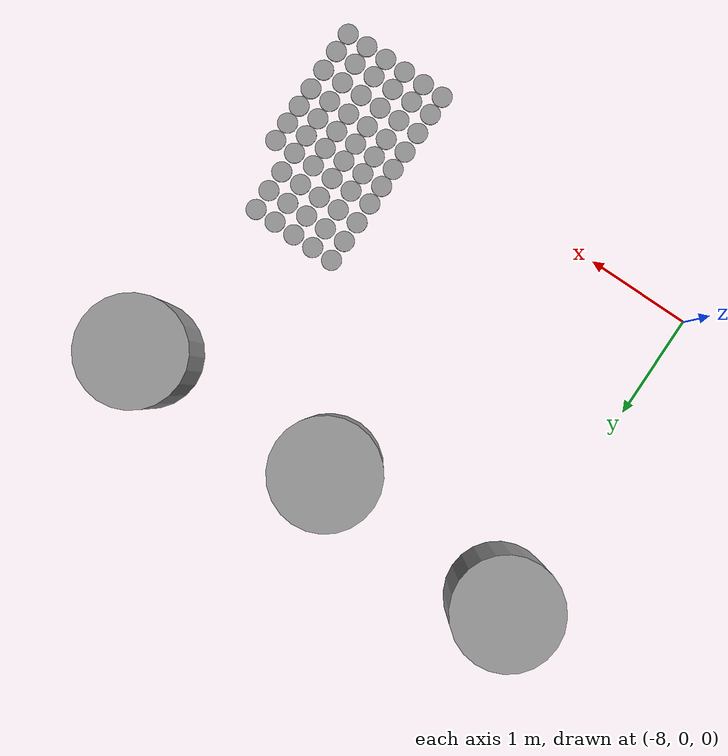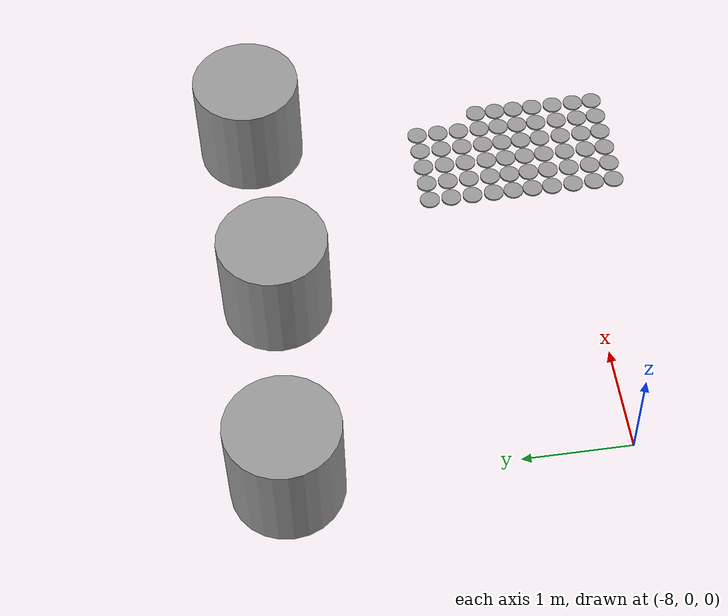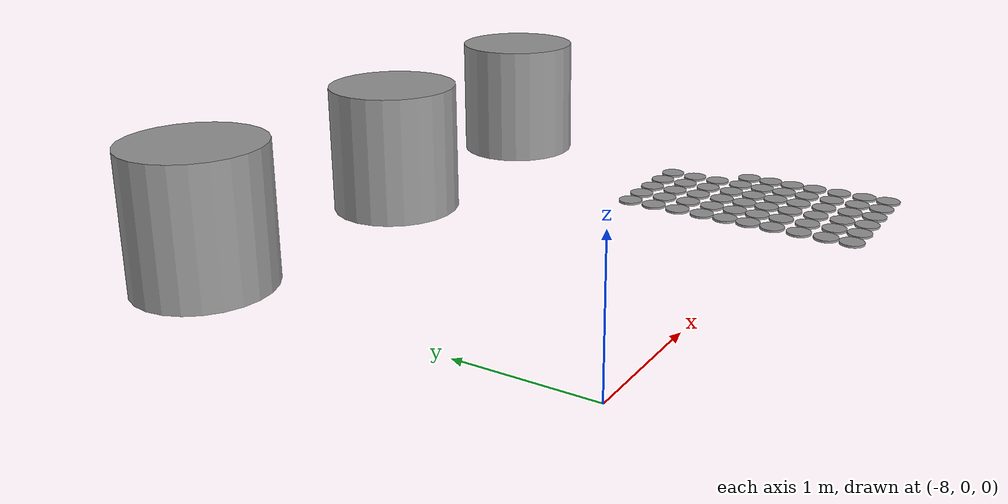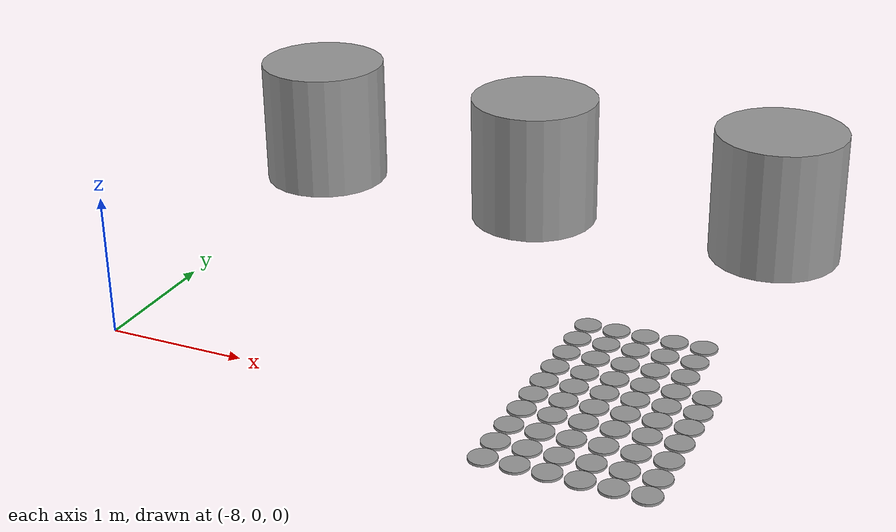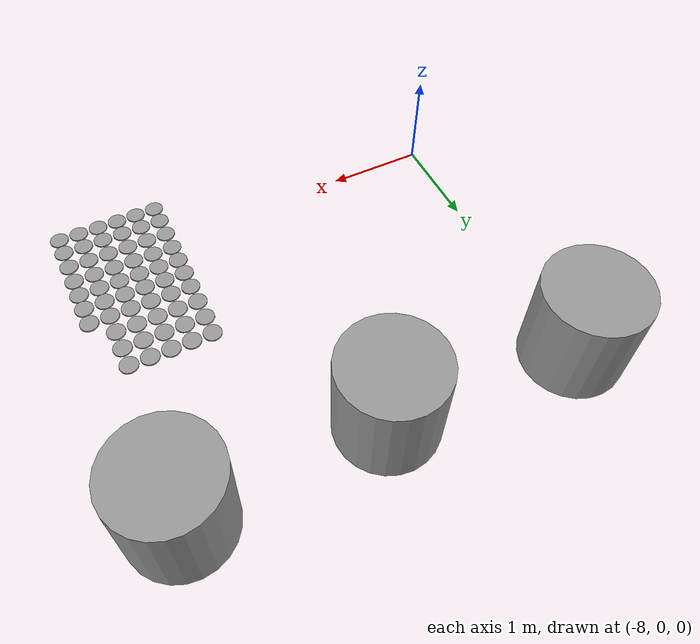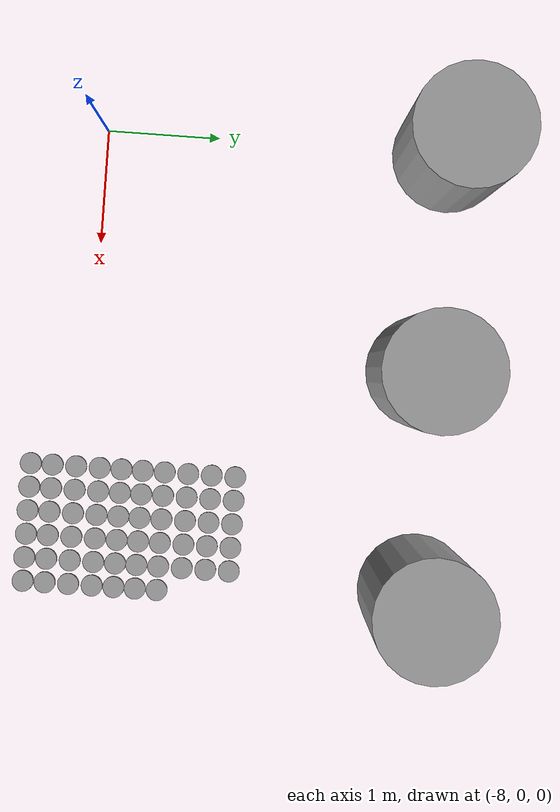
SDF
<sdf version="1.6">
 <world name="default">
  <model name="unit_cylinder_clone_0">
   <pose>-5 0.515077 0.008117 0 -0 0</pose>
   <link name="link">
    <inertial>
     <mass>1</mass>
     <inertia><ixx>0.145833</ixx><ixy>0</ixy><ixz>0</ixz><iyy>0.145833</iyy><iyz>0</iyz><izz>0.125</izz></inertia>
    </inertial>
    <collision name="collision">
     <geometry><cylinder><radius>0.0950718</radius><length>0.0162339</length></cylinder></geometry>
     <max_contacts>5</max_contacts>
    </collision>
    <visual name="visual">
     <geometry><cylinder><radius>0.0950718</radius><length>0.0162339</length></cylinder></geometry>
     <material>
      <script><name>Gazebo/Grey</name><uri>file://media/materials/scripts/gazebo.material</uri></script>
     </material>
    </visual>
   </link>
  </model>
  <model name="unit_cylinder_clone_1">
   <pose>-5 0.71 0.008117 0 -0 0</pose>
   <link name="link">
    <inertial>
     <mass>1</mass>
     <inertia><ixx>0.145833</ixx><ixy>0</ixy><ixz>0</ixz><iyy>0.145833</iyy><iyz>0</iyz><izz>0.125</izz></inertia>
    </inertial>
    <collision name="collision">
     <geometry><cylinder><radius>0.0950718</radius><length>0.0162339</length></cylinder></geometry>
     <max_contacts>5</max_contacts>
    </collision>
    <visual name="visual">
     <geometry><cylinder><radius>0.0950718</radius><length>0.0162339</length></cylinder></geometry>
     <material>
      <script><name>Gazebo/Grey</name><uri>file://media/materials/scripts/gazebo.material</uri></script>
     </material>
    </visual>
   </link>
  </model>
  <model name="unit_cylinder_clone_2">
   <pose>-5 0.92 0.008117 0 -0 0</pose>
   <link name="link">
    <inertial>
     <mass>1</mass>
     <inertia><ixx>0.145833</ixx><ixy>0</ixy><ixz>0</ixz><iyy>0.145833</iyy><iyz>0</iyz><izz>0.125</izz></inertia>
    </inertial>
    <collision name="collision">
     <geometry><cylinder><radius>0.0950718</radius><length>0.0162339</length></cylinder></geometry>
     <max_contacts>5</max_contacts>
    </collision>
    <visual name="visual">
     <geometry><cylinder><radius>0.0950718</radius><length>0.0162339</length></cylinder></geometry>
     <material>
      <script><name>Gazebo/Grey</name><uri>file://media/materials/scripts/gazebo.material</uri></script>
     </material>
    </visual>
   </link>
  </model>
  <model name="unit_cylinder_clone_3">
   <pose>-5 1.13 0.008117 0 -0 0</pose>
   <link name="link">
    <inertial>
     <mass>1</mass>
     <inertia><ixx>0.145833</ixx><ixy>0</ixy><ixz>0</ixz><iyy>0.145833</iyy><iyz>0</iyz><izz>0.125</izz></inertia>
    </inertial>
    <collision name="collision">
     <geometry><cylinder><radius>0.0950718</radius><length>0.0162339</length></cylinder></geometry>
     <max_contacts>5</max_contacts>
    </collision>
    <visual name="visual">
     <geometry><cylinder><radius>0.0950718</radius><length>0.0162339</length></cylinder></geometry>
     <material>
      <script><name>Gazebo/Grey</name><uri>file://media/materials/scripts/gazebo.material</uri></script>
     </material>
    </visual>
   </link>
  </model>
  <model name="unit_cylinder_clone_4">
   <pose>-5 1.34 0.008117 0 -0 0</pose>
   <link name="link">
    <inertial>
     <mass>1</mass>
     <inertia><ixx>0.145833</ixx><ixy>0</ixy><ixz>0</ixz><iyy>0.145833</iyy><iyz>0</iyz><izz>0.125</izz></inertia>
    </inertial>
    <collision name="collision">
     <geometry><cylinder><radius>0.0950718</radius><length>0.0162339</length></cylinder></geometry>
     <max_contacts>5</max_contacts>
    </collision>
    <visual name="visual">
     <geometry><cylinder><radius>0.0950718</radius><length>0.0162339</length></cylinder></geometry>
     <material>
      <script><name>Gazebo/Grey</name><uri>file://media/materials/scripts/gazebo.material</uri></script>
     </material>
    </visual>
   </link>
  </model>
  <model name="unit_cylinder_clone_5">
   <pose>-4.79 0.515077 0.008117 0 -0 0</pose>
   <link name="link">
    <inertial>
     <mass>1</mass>
     <inertia><ixx>0.145833</ixx><ixy>0</ixy><ixz>0</ixz><iyy>0.145833</iyy><iyz>0</iyz><izz>0.125</izz></inertia>
    </inertial>
    <collision name="collision">
     <geometry><cylinder><radius>0.0950718</radius><length>0.0162339</length></cylinder></geometry>
     <max_contacts>5</max_contacts>
    </collision>
    <visual name="visual">
     <geometry><cylinder><radius>0.0950718</radius><length>0.0162339</length></cylinder></geometry>
     <material>
      <script><name>Gazebo/Grey</name><uri>file://media/materials/scripts/gazebo.material</uri></script>
     </material>
    </visual>
   </link>
  </model>
  <model name="unit_cylinder_clone_6">
   <pose>-4.79 0.71 0.008117 0 -0 0</pose>
   <link name="link">
    <inertial>
     <mass>1</mass>
     <inertia><ixx>0.145833</ixx><ixy>0</ixy><ixz>0</ixz><iyy>0.145833</iyy><iyz>0</iyz><izz>0.125</izz></inertia>
    </inertial>
    <collision name="collision">
     <geometry><cylinder><radius>0.0950718</radius><length>0.0162339</length></cylinder></geometry>
     <max_contacts>5</max_contacts>
    </collision>
    <visual name="visual">
     <geometry><cylinder><radius>0.0950718</radius><length>0.0162339</length></cylinder></geometry>
     <material>
      <script><name>Gazebo/Grey</name><uri>file://media/materials/scripts/gazebo.material</uri></script>
     </material>
    </visual>
   </link>
  </model>
  <model name="unit_cylinder_clone_7">
   <pose>-4.79 0.92 0.008117 0 -0 0</pose>
   <link name="link">
    <inertial>
     <mass>1</mass>
     <inertia><ixx>0.145833</ixx><ixy>0</ixy><ixz>0</ixz><iyy>0.145833</iyy><iyz>0</iyz><izz>0.125</izz></inertia>
    </inertial>
    <collision name="collision">
     <geometry><cylinder><radius>0.0950718</radius><length>0.0162339</length></cylinder></geometry>
     <max_contacts>5</max_contacts>
    </collision>
    <visual name="visual">
     <geometry><cylinder><radius>0.0950718</radius><length>0.0162339</length></cylinder></geometry>
     <material>
      <script><name>Gazebo/Grey</name><uri>file://media/materials/scripts/gazebo.material</uri></script>
     </material>
    </visual>
   </link>
  </model>
  <model name="unit_cylinder_clone_8">
   <pose>-4.79 1.13 0.008117 0 -0 0</pose>
   <link name="link">
    <inertial>
     <mass>1</mass>
     <inertia><ixx>0.145833</ixx><ixy>0</ixy><ixz>0</ixz><iyy>0.145833</iyy><iyz>0</iyz><izz>0.125</izz></inertia>
    </inertial>
    <collision name="collision">
     <geometry><cylinder><radius>0.0950718</radius><length>0.0162339</length></cylinder></geometry>
     <max_contacts>5</max_contacts>
    </collision>
    <visual name="visual">
     <geometry><cylinder><radius>0.0950718</radius><length>0.0162339</length></cylinder></geometry>
     <material>
      <script><name>Gazebo/Grey</name><uri>file://media/materials/scripts/gazebo.material</uri></script>
     </material>
    </visual>
   </link>
  </model>
  <model name="unit_cylinder_clone_9">
   <pose>-4.79 1.34 0.008117 0 -0 0</pose>
   <link name="link">
    <inertial>
     <mass>1</mass>
     <inertia><ixx>0.145833</ixx><ixy>0</ixy><ixz>0</ixz><iyy>0.145833</iyy><iyz>0</iyz><izz>0.125</izz></inertia>
    </inertial>
    <collision name="collision">
     <geometry><cylinder><radius>0.0950718</radius><length>0.0162339</length></cylinder></geometry>
     <max_contacts>5</max_contacts>
    </collision>
    <visual name="visual">
     <geometry><cylinder><radius>0.0950718</radius><length>0.0162339</length></cylinder></geometry>
     <material>
      <script><name>Gazebo/Grey</name><uri>file://media/materials/scripts/gazebo.material</uri></script>
     </material>
    </visual>
   </link>
  </model>
  <model name="unit_cylinder_clone_10">
   <pose>-4.58 0.515077 0.008117 0 -0 0</pose>
   <link name="link">
    <inertial>
     <mass>1</mass>
     <inertia><ixx>0.145833</ixx><ixy>0</ixy><ixz>0</ixz><iyy>0.145833</iyy><iyz>0</iyz><izz>0.125</izz></inertia>
    </inertial>
    <collision name="collision">
     <geometry><cylinder><radius>0.0950718</radius><length>0.0162339</length></cylinder></geometry>
     <max_contacts>5</max_contacts>
    </collision>
    <visual name="visual">
     <geometry><cylinder><radius>0.0950718</radius><length>0.0162339</length></cylinder></geometry>
     <material>
      <script><name>Gazebo/Grey</name><uri>file://media/materials/scripts/gazebo.material</uri></script>
     </material>
    </visual>
   </link>
  </model>
  <model name="unit_cylinder_clone_11">
   <pose>-4.58 0.71 0.008117 0 -0 0</pose>
   <link name="link">
    <inertial>
     <mass>1</mass>
     <inertia><ixx>0.145833</ixx><ixy>0</ixy><ixz>0</ixz><iyy>0.145833</iyy><iyz>0</iyz><izz>0.125</izz></inertia>
    </inertial>
    <collision name="collision">
     <geometry><cylinder><radius>0.0950718</radius><length>0.0162339</length></cylinder></geometry>
     <max_contacts>5</max_contacts>
    </collision>
    <visual name="visual">
     <geometry><cylinder><radius>0.0950718</radius><length>0.0162339</length></cylinder></geometry>
     <material>
      <script><name>Gazebo/Grey</name><uri>file://media/materials/scripts/gazebo.material</uri></script>
     </material>
    </visual>
   </link>
  </model>
  <model name="unit_cylinder_clone_12">
   <pose>-4.58 0.92 0.008117 0 -0 0</pose>
   <link name="link">
    <inertial>
     <mass>1</mass>
     <inertia><ixx>0.145833</ixx><ixy>0</ixy><ixz>0</ixz><iyy>0.145833</iyy><iyz>0</iyz><izz>0.125</izz></inertia>
    </inertial>
    <collision name="collision">
     <geometry><cylinder><radius>0.0950718</radius><length>0.0162339</length></cylinder></geometry>
     <max_contacts>5</max_contacts>
    </collision>
    <visual name="visual">
     <geometry><cylinder><radius>0.0950718</radius><length>0.0162339</length></cylinder></geometry>
     <material>
      <script><name>Gazebo/Grey</name><uri>file://media/materials/scripts/gazebo.material</uri></script>
     </material>
    </visual>
   </link>
  </model>
  <model name="unit_cylinder_clone_13">
   <pose>-4.58 1.13 0.008117 0 -0 0</pose>
   <link name="link">
    <inertial>
     <mass>1</mass>
     <inertia><ixx>0.145833</ixx><ixy>0</ixy><ixz>0</ixz><iyy>0.145833</iyy><iyz>0</iyz><izz>0.125</izz></inertia>
    </inertial>
    <collision name="collision">
     <geometry><cylinder><radius>0.0950718</radius><length>0.0162339</length></cylinder></geometry>
     <max_contacts>5</max_contacts>
    </collision>
    <visual name="visual">
     <geometry><cylinder><radius>0.0950718</radius><length>0.0162339</length></cylinder></geometry>
     <material>
      <script><name>Gazebo/Grey</name><uri>file://media/materials/scripts/gazebo.material</uri></script>
     </material>
    </visual>
   </link>
  </model>
  <model name="unit_cylinder_clone_14">
   <pose>-4.58 1.34 0.008117 0 -0 0</pose>
   <link name="link">
    <inertial>
     <mass>1</mass>
     <inertia><ixx>0.145833</ixx><ixy>0</ixy><ixz>0</ixz><iyy>0.145833</iyy><iyz>0</iyz><izz>0.125</izz></inertia>
    </inertial>
    <collision name="collision">
     <geometry><cylinder><radius>0.0950718</radius><length>0.0162339</length></cylinder></geometry>
     <max_contacts>5</max_contacts>
    </collision>
    <visual name="visual">
     <geometry><cylinder><radius>0.0950718</radius><length>0.0162339</length></cylinder></geometry>
     <material>
      <script><name>Gazebo/Grey</name><uri>file://media/materials/scripts/gazebo.material</uri></script>
     </material>
    </visual>
   </link>
  </model>
  <model name="unit_cylinder_clone_15">
   <pose>-4.37 0.515077 0.008117 0 -0 0</pose>
   <link name="link">
    <inertial>
     <mass>1</mass>
     <inertia><ixx>0.145833</ixx><ixy>0</ixy><ixz>0</ixz><iyy>0.145833</iyy><iyz>0</iyz><izz>0.125</izz></inertia>
    </inertial>
    <collision name="collision">
     <geometry><cylinder><radius>0.0950718</radius><length>0.0162339</length></cylinder></geometry>
     <max_contacts>5</max_contacts>
    </collision>
    <visual name="visual">
     <geometry><cylinder><radius>0.0950718</radius><length>0.0162339</length></cylinder></geometry>
     <material>
      <script><name>Gazebo/Grey</name><uri>file://media/materials/scripts/gazebo.material</uri></script>
     </material>
    </visual>
   </link>
  </model>
  <model name="unit_cylinder_clone_16">
   <pose>-4.37 0.71 0.008117 0 -0 0</pose>
   <link name="link">
    <inertial>
     <mass>1</mass>
     <inertia><ixx>0.145833</ixx><ixy>0</ixy><ixz>0</ixz><iyy>0.145833</iyy><iyz>0</iyz><izz>0.125</izz></inertia>
    </inertial>
    <collision name="collision">
     <geometry><cylinder><radius>0.0950718</radius><length>0.0162339</length></cylinder></geometry>
     <max_contacts>5</max_contacts>
    </collision>
    <visual name="visual">
     <geometry><cylinder><radius>0.0950718</radius><length>0.0162339</length></cylinder></geometry>
     <material>
      <script><name>Gazebo/Grey</name><uri>file://media/materials/scripts/gazebo.material</uri></script>
     </material>
    </visual>
   </link>
  </model>
  <model name="unit_cylinder_clone_17">
   <pose>-4.37 0.92 0.008117 0 -0 0</pose>
   <link name="link">
    <inertial>
     <mass>1</mass>
     <inertia><ixx>0.145833</ixx><ixy>0</ixy><ixz>0</ixz><iyy>0.145833</iyy><iyz>0</iyz><izz>0.125</izz></inertia>
    </inertial>
    <collision name="collision">
     <geometry><cylinder><radius>0.0950718</radius><length>0.0162339</length></cylinder></geometry>
     <max_contacts>5</max_contacts>
    </collision>
    <visual name="visual">
     <geometry><cylinder><radius>0.0950718</radius><length>0.0162339</length></cylinder></geometry>
     <material>
      <script><name>Gazebo/Grey</name><uri>file://media/materials/scripts/gazebo.material</uri></script>
     </material>
    </visual>
   </link>
  </model>
  <model name="unit_cylinder_clone_18">
   <pose>-4.37 1.13 0.008117 0 -0 0</pose>
   <link name="link">
    <inertial>
     <mass>1</mass>
     <inertia><ixx>0.145833</ixx><ixy>0</ixy><ixz>0</ixz><iyy>0.145833</iyy><iyz>0</iyz><izz>0.125</izz></inertia>
    </inertial>
    <collision name="collision">
     <geometry><cylinder><radius>0.0950718</radius><length>0.0162339</length></cylinder></geometry>
     <max_contacts>5</max_contacts>
    </collision>
    <visual name="visual">
     <geometry><cylinder><radius>0.0950718</radius><length>0.0162339</length></cylinder></geometry>
     <material>
      <script><name>Gazebo/Grey</name><uri>file://media/materials/scripts/gazebo.material</uri></script>
     </material>
    </visual>
   </link>
  </model>
  <model name="unit_cylinder_clone_19">
   <pose>-4.37 1.34 0.008117 0 -0 0</pose>
   <link name="link">
    <inertial>
     <mass>1</mass>
     <inertia><ixx>0.145833</ixx><ixy>0</ixy><ixz>0</ixz><iyy>0.145833</iyy><iyz>0</iyz><izz>0.125</izz></inertia>
    </inertial>
    <collision name="collision">
     <geometry><cylinder><radius>0.0950718</radius><length>0.0162339</length></cylinder></geometry>
     <max_contacts>5</max_contacts>
    </collision>
    <visual name="visual">
     <geometry><cylinder><radius>0.0950718</radius><length>0.0162339</length></cylinder></geometry>
     <material>
      <script><name>Gazebo/Grey</name><uri>file://media/materials/scripts/gazebo.material</uri></script>
     </material>
    </visual>
   </link>
  </model>
  <model name="unit_cylinder_clone_20">
   <pose>-4.16 0.515077 0.008117 0 -0 0</pose>
   <link name="link">
    <inertial>
     <mass>1</mass>
     <inertia><ixx>0.145833</ixx><ixy>0</ixy><ixz>0</ixz><iyy>0.145833</iyy><iyz>0</iyz><izz>0.125</izz></inertia>
    </inertial>
    <collision name="collision">
     <geometry><cylinder><radius>0.0950718</radius><length>0.0162339</length></cylinder></geometry>
     <max_contacts>5</max_contacts>
    </collision>
    <visual name="visual">
     <geometry><cylinder><radius>0.0950718</radius><length>0.0162339</length></cylinder></geometry>
     <material>
      <script><name>Gazebo/Grey</name><uri>file://media/materials/scripts/gazebo.material</uri></script>
     </material>
    </visual>
   </link>
  </model>
  <model name="unit_cylinder_clone_21">
   <pose>-4.16 0.71 0.008117 0 -0 0</pose>
   <link name="link">
    <inertial>
     <mass>1</mass>
     <inertia><ixx>0.145833</ixx><ixy>0</ixy><ixz>0</ixz><iyy>0.145833</iyy><iyz>0</iyz><izz>0.125</izz></inertia>
    </inertial>
    <collision name="collision">
     <geometry><cylinder><radius>0.0950718</radius><length>0.0162339</length></cylinder></geometry>
     <max_contacts>5</max_contacts>
    </collision>
    <visual name="visual">
     <geometry><cylinder><radius>0.0950718</radius><length>0.0162339</length></cylinder></geometry>
     <material>
      <script><name>Gazebo/Grey</name><uri>file://media/materials/scripts/gazebo.material</uri></script>
     </material>
    </visual>
   </link>
  </model>
  <model name="unit_cylinder_clone_22">
   <pose>-4.16 0.92 0.008117 0 -0 0</pose>
   <link name="link">
    <inertial>
     <mass>1</mass>
     <inertia><ixx>0.145833</ixx><ixy>0</ixy><ixz>0</ixz><iyy>0.145833</iyy><iyz>0</iyz><izz>0.125</izz></inertia>
    </inertial>
    <collision name="collision">
     <geometry><cylinder><radius>0.0950718</radius><length>0.0162339</length></cylinder></geometry>
     <max_contacts>5</max_contacts>
    </collision>
    <visual name="visual">
     <geometry><cylinder><radius>0.0950718</radius><length>0.0162339</length></cylinder></geometry>
     <material>
      <script><name>Gazebo/Grey</name><uri>file://media/materials/scripts/gazebo.material</uri></script>
     </material>
    </visual>
   </link>
  </model>
  <model name="unit_cylinder_clone_23">
   <pose>-4.16 1.13 0.008117 0 -0 0</pose>
   <link name="link">
    <inertial>
     <mass>1</mass>
     <inertia><ixx>0.145833</ixx><ixy>0</ixy><ixz>0</ixz><iyy>0.145833</iyy><iyz>0</iyz><izz>0.125</izz></inertia>
    </inertial>
    <collision name="collision">
     <geometry><cylinder><radius>0.0950718</radius><length>0.0162339</length></cylinder></geometry>
     <max_contacts>5</max_contacts>
    </collision>
    <visual name="visual">
     <geometry><cylinder><radius>0.0950718</radius><length>0.0162339</length></cylinder></geometry>
     <material>
      <script><name>Gazebo/Grey</name><uri>file://media/materials/scripts/gazebo.material</uri></script>
     </material>
    </visual>
   </link>
  </model>
  <model name="unit_cylinder_clone_24">
   <pose>-4.16 1.34 0.008117 0 -0 0</pose>
   <link name="link">
    <inertial>
     <mass>1</mass>
     <inertia><ixx>0.145833</ixx><ixy>0</ixy><ixz>0</ixz><iyy>0.145833</iyy><iyz>0</iyz><izz>0.125</izz></inertia>
    </inertial>
    <collision name="collision">
     <geometry><cylinder><radius>0.0950718</radius><length>0.0162339</length></cylinder></geometry>
     <max_contacts>5</max_contacts>
    </collision>
    <visual name="visual">
     <geometry><cylinder><radius>0.0950718</radius><length>0.0162339</length></cylinder></geometry>
     <material>
      <script><name>Gazebo/Grey</name><uri>file://media/materials/scripts/gazebo.material</uri></script>
     </material>
    </visual>
   </link>
  </model>
  <model name="unit_cylinder_clone_25">
   <pose>-3.95 0.515077 0.008117 0 -0 0</pose>
   <link name="link">
    <inertial>
     <mass>1</mass>
     <inertia><ixx>0.145833</ixx><ixy>0</ixy><ixz>0</ixz><iyy>0.145833</iyy><iyz>0</iyz><izz>0.125</izz></inertia>
    </inertial>
    <collision name="collision">
     <geometry><cylinder><radius>0.0950718</radius><length>0.0162339</length></cylinder></geometry>
     <max_contacts>5</max_contacts>
    </collision>
    <visual name="visual">
     <geometry><cylinder><radius>0.0950718</radius><length>0.0162339</length></cylinder></geometry>
     <material>
      <script><name>Gazebo/Grey</name><uri>file://media/materials/scripts/gazebo.material</uri></script>
     </material>
    </visual>
   </link>
  </model>
  <model name="unit_cylinder_clone_26">
   <pose>-3.95 0.71 0.008117 0 -0 0</pose>
   <link name="link">
    <inertial>
     <mass>1</mass>
     <inertia><ixx>0.145833</ixx><ixy>0</ixy><ixz>0</ixz><iyy>0.145833</iyy><iyz>0</iyz><izz>0.125</izz></inertia>
    </inertial>
    <collision name="collision">
     <geometry><cylinder><radius>0.0950718</radius><length>0.0162339</length></cylinder></geometry>
     <max_contacts>5</max_contacts>
    </collision>
    <visual name="visual">
     <geometry><cylinder><radius>0.0950718</radius><length>0.0162339</length></cylinder></geometry>
     <material>
      <script><name>Gazebo/Grey</name><uri>file://media/materials/scripts/gazebo.material</uri></script>
     </material>
    </visual>
   </link>
  </model>
  <model name="unit_cylinder_clone_250">
   <pose>-5 -0.484923 0.008117 0 -0 0</pose>
   <link name="link">
    <inertial>
     <mass>1</mass>
     <inertia><ixx>0.145833</ixx><ixy>0</ixy><ixz>0</ixz><iyy>0.145833</iyy><iyz>0</iyz><izz>0.125</izz></inertia>
    </inertial>
    <collision name="collision">
     <geometry><cylinder><radius>0.0950718</radius><length>0.0162339</length></cylinder></geometry>
     <max_contacts>5</max_contacts>
    </collision>
    <visual name="visual">
     <geometry><cylinder><radius>0.0950718</radius><length>0.0162339</length></cylinder></geometry>
     <material>
      <script><name>Gazebo/Grey</name><uri>file://media/materials/scripts/gazebo.material</uri></script>
     </material>
    </visual>
   </link>
  </model>
  <model name="unit_cylinder_clone_251">
   <pose>-5 -0.29 0.008117 0 -0 0</pose>
   <link name="link">
    <inertial>
     <mass>1</mass>
     <inertia><ixx>0.145833</ixx><ixy>0</ixy><ixz>0</ixz><iyy>0.145833</iyy><iyz>0</iyz><izz>0.125</izz></inertia>
    </inertial>
    <collision name="collision">
     <geometry><cylinder><radius>0.0950718</radius><length>0.0162339</length></cylinder></geometry>
     <max_contacts>5</max_contacts>
    </collision>
    <visual name="visual">
     <geometry><cylinder><radius>0.0950718</radius><length>0.0162339</length></cylinder></geometry>
     <material>
      <script><name>Gazebo/Grey</name><uri>file://media/materials/scripts/gazebo.material</uri></script>
     </material>
    </visual>
   </link>
  </model>
  <model name="unit_cylinder_clone_252">
   <pose>-5 -0.08 0.008117 0 -0 0</pose>
   <link name="link">
    <inertial>
     <mass>1</mass>
     <inertia><ixx>0.145833</ixx><ixy>0</ixy><ixz>0</ixz><iyy>0.145833</iyy><iyz>0</iyz><izz>0.125</izz></inertia>
    </inertial>
    <collision name="collision">
     <geometry><cylinder><radius>0.0950718</radius><length>0.0162339</length></cylinder></geometry>
     <max_contacts>5</max_contacts>
    </collision>
    <visual name="visual">
     <geometry><cylinder><radius>0.0950718</radius><length>0.0162339</length></cylinder></geometry>
     <material>
      <script><name>Gazebo/Grey</name><uri>file://media/materials/scripts/gazebo.material</uri></script>
     </material>
    </visual>
   </link>
  </model>
  <model name="unit_cylinder_clone_253">
   <pose>-5 0.13 0.008117 0 -0 0</pose>
   <link name="link">
    <inertial>
     <mass>1</mass>
     <inertia><ixx>0.145833</ixx><ixy>0</ixy><ixz>0</ixz><iyy>0.145833</iyy><iyz>0</iyz><izz>0.125</izz></inertia>
    </inertial>
    <collision name="collision">
     <geometry><cylinder><radius>0.0950718</radius><length>0.0162339</length></cylinder></geometry>
     <max_contacts>5</max_contacts>
    </collision>
    <visual name="visual">
     <geometry><cylinder><radius>0.0950718</radius><length>0.0162339</length></cylinder></geometry>
     <material>
      <script><name>Gazebo/Grey</name><uri>file://media/materials/scripts/gazebo.material</uri></script>
     </material>
    </visual>
   </link>
  </model>
  <model name="unit_cylinder_clone_254">
   <pose>-5 0.324923 0.008117 -0 -0 -0</pose>
   <link name="link">
    <inertial>
     <mass>1</mass>
     <inertia><ixx>0.145833</ixx><ixy>0</ixy><ixz>0</ixz><iyy>0.145833</iyy><iyz>0</iyz><izz>0.125</izz></inertia>
    </inertial>
    <collision name="collision">
     <geometry><cylinder><radius>0.0950718</radius><length>0.0162339</length></cylinder></geometry>
     <max_contacts>5</max_contacts>
    </collision>
    <visual name="visual">
     <geometry><cylinder><radius>0.0950718</radius><length>0.0162339</length></cylinder></geometry>
     <material>
      <script><name>Gazebo/Grey</name><uri>file://media/materials/scripts/gazebo.material</uri></script>
     </material>
    </visual>
   </link>
  </model>
  <model name="unit_cylinder_clone_255">
   <pose>-4.79 -0.484923 0.008117 0 -0 0</pose>
   <link name="link">
    <inertial>
     <mass>1</mass>
     <inertia><ixx>0.145833</ixx><ixy>0</ixy><ixz>0</ixz><iyy>0.145833</iyy><iyz>0</iyz><izz>0.125</izz></inertia>
    </inertial>
    <collision name="collision">
     <geometry><cylinder><radius>0.0950718</radius><length>0.0162339</length></cylinder></geometry>
     <max_contacts>5</max_contacts>
    </collision>
    <visual name="visual">
     <geometry><cylinder><radius>0.0950718</radius><length>0.0162339</length></cylinder></geometry>
     <material>
      <script><name>Gazebo/Grey</name><uri>file://media/materials/scripts/gazebo.material</uri></script>
     </material>
    </visual>
   </link>
  </model>
  <model name="unit_cylinder_clone_256">
   <pose>-4.79 -0.29 0.008117 0 -0 0</pose>
   <link name="link">
    <inertial>
     <mass>1</mass>
     <inertia><ixx>0.145833</ixx><ixy>0</ixy><ixz>0</ixz><iyy>0.145833</iyy><iyz>0</iyz><izz>0.125</izz></inertia>
    </inertial>
    <collision name="collision">
     <geometry><cylinder><radius>0.0950718</radius><length>0.0162339</length></cylinder></geometry>
     <max_contacts>5</max_contacts>
    </collision>
    <visual name="visual">
     <geometry><cylinder><radius>0.0950718</radius><length>0.0162339</length></cylinder></geometry>
     <material>
      <script><name>Gazebo/Grey</name><uri>file://media/materials/scripts/gazebo.material</uri></script>
     </material>
    </visual>
   </link>
  </model>
  <model name="unit_cylinder_clone_257">
   <pose>-4.79 -0.08 0.008117 0 -0 0</pose>
   <link name="link">
    <inertial>
     <mass>1</mass>
     <inertia><ixx>0.145833</ixx><ixy>0</ixy><ixz>0</ixz><iyy>0.145833</iyy><iyz>0</iyz><izz>0.125</izz></inertia>
    </inertial>
    <collision name="collision">
     <geometry><cylinder><radius>0.0950718</radius><length>0.0162339</length></cylinder></geometry>
     <max_contacts>5</max_contacts>
    </collision>
    <visual name="visual">
     <geometry><cylinder><radius>0.0950718</radius><length>0.0162339</length></cylinder></geometry>
     <material>
      <script><name>Gazebo/Grey</name><uri>file://media/materials/scripts/gazebo.material</uri></script>
     </material>
    </visual>
   </link>
  </model>
  <model name="unit_cylinder_clone_258">
   <pose>-4.79 0.13 0.008117 0 -0 0</pose>
   <link name="link">
    <inertial>
     <mass>1</mass>
     <inertia><ixx>0.145833</ixx><ixy>0</ixy><ixz>0</ixz><iyy>0.145833</iyy><iyz>0</iyz><izz>0.125</izz></inertia>
    </inertial>
    <collision name="collision">
     <geometry><cylinder><radius>0.0950718</radius><length>0.0162339</length></cylinder></geometry>
     <max_contacts>5</max_contacts>
    </collision>
    <visual name="visual">
     <geometry><cylinder><radius>0.0950718</radius><length>0.0162339</length></cylinder></geometry>
     <material>
      <script><name>Gazebo/Grey</name><uri>file://media/materials/scripts/gazebo.material</uri></script>
     </material>
    </visual>
   </link>
  </model>
  <model name="unit_cylinder_clone_259">
   <pose>-4.79 0.324923 0.008117 -0 -0 -0</pose>
   <link name="link">
    <inertial>
     <mass>1</mass>
     <inertia><ixx>0.145833</ixx><ixy>0</ixy><ixz>0</ixz><iyy>0.145833</iyy><iyz>0</iyz><izz>0.125</izz></inertia>
    </inertial>
    <collision name="collision">
     <geometry><cylinder><radius>0.0950718</radius><length>0.0162339</length></cylinder></geometry>
     <max_contacts>5</max_contacts>
    </collision>
    <visual name="visual">
     <geometry><cylinder><radius>0.0950718</radius><length>0.0162339</length></cylinder></geometry>
     <material>
      <script><name>Gazebo/Grey</name><uri>file://media/materials/scripts/gazebo.material</uri></script>
     </material>
    </visual>
   </link>
  </model>
  <model name="unit_cylinder_clone_260">
   <pose>-4.58 -0.484923 0.008117 0 -0 0</pose>
   <link name="link">
    <inertial>
     <mass>1</mass>
     <inertia><ixx>0.145833</ixx><ixy>0</ixy><ixz>0</ixz><iyy>0.145833</iyy><iyz>0</iyz><izz>0.125</izz></inertia>
    </inertial>
    <collision name="collision">
     <geometry><cylinder><radius>0.0950718</radius><length>0.0162339</length></cylinder></geometry>
     <max_contacts>5</max_contacts>
    </collision>
    <visual name="visual">
     <geometry><cylinder><radius>0.0950718</radius><length>0.0162339</length></cylinder></geometry>
     <material>
      <script><name>Gazebo/Grey</name><uri>file://media/materials/scripts/gazebo.material</uri></script>
     </material>
    </visual>
   </link>
  </model>
  <model name="unit_cylinder_clone_261">
   <pose>-4.58 -0.29 0.008117 0 -0 0</pose>
   <link name="link">
    <inertial>
     <mass>1</mass>
     <inertia><ixx>0.145833</ixx><ixy>0</ixy><ixz>0</ixz><iyy>0.145833</iyy><iyz>0</iyz><izz>0.125</izz></inertia>
    </inertial>
    <collision name="collision">
     <geometry><cylinder><radius>0.0950718</radius><length>0.0162339</length></cylinder></geometry>
     <max_contacts>5</max_contacts>
    </collision>
    <visual name="visual">
     <geometry><cylinder><radius>0.0950718</radius><length>0.0162339</length></cylinder></geometry>
     <material>
      <script><name>Gazebo/Grey</name><uri>file://media/materials/scripts/gazebo.material</uri></script>
     </material>
    </visual>
   </link>
  </model>
  <model name="unit_cylinder_clone_262">
   <pose>-4.58 -0.08 0.008117 0 -0 0</pose>
   <link name="link">
    <inertial>
     <mass>1</mass>
     <inertia><ixx>0.145833</ixx><ixy>0</ixy><ixz>0</ixz><iyy>0.145833</iyy><iyz>0</iyz><izz>0.125</izz></inertia>
    </inertial>
    <collision name="collision">
     <geometry><cylinder><radius>0.0950718</radius><length>0.0162339</length></cylinder></geometry>
     <max_contacts>5</max_contacts>
    </collision>
    <visual name="visual">
     <geometry><cylinder><radius>0.0950718</radius><length>0.0162339</length></cylinder></geometry>
     <material>
      <script><name>Gazebo/Grey</name><uri>file://media/materials/scripts/gazebo.material</uri></script>
     </material>
    </visual>
   </link>
  </model>
  <model name="unit_cylinder_clone_263">
   <pose>-4.58 0.13 0.008117 0 -0 0</pose>
   <link name="link">
    <inertial>
     <mass>1</mass>
     <inertia><ixx>0.145833</ixx><ixy>0</ixy><ixz>0</ixz><iyy>0.145833</iyy><iyz>0</iyz><izz>0.125</izz></inertia>
    </inertial>
    <collision name="collision">
     <geometry><cylinder><radius>0.0950718</radius><length>0.0162339</length></cylinder></geometry>
     <max_contacts>5</max_contacts>
    </collision>
    <visual name="visual">
     <geometry><cylinder><radius>0.0950718</radius><length>0.0162339</length></cylinder></geometry>
     <material>
      <script><name>Gazebo/Grey</name><uri>file://media/materials/scripts/gazebo.material</uri></script>
     </material>
    </visual>
   </link>
  </model>
  <model name="unit_cylinder_clone_264">
   <pose>-4.58 0.324923 0.008117 -0 -0 -0</pose>
   <link name="link">
    <inertial>
     <mass>1</mass>
     <inertia><ixx>0.145833</ixx><ixy>0</ixy><ixz>0</ixz><iyy>0.145833</iyy><iyz>0</iyz><izz>0.125</izz></inertia>
    </inertial>
    <collision name="collision">
     <geometry><cylinder><radius>0.0950718</radius><length>0.0162339</length></cylinder></geometry>
     <max_contacts>5</max_contacts>
    </collision>
    <visual name="visual">
     <geometry><cylinder><radius>0.0950718</radius><length>0.0162339</length></cylinder></geometry>
     <material>
      <script><name>Gazebo/Grey</name><uri>file://media/materials/scripts/gazebo.material</uri></script>
     </material>
    </visual>
   </link>
  </model>
  <model name="unit_cylinder_clone_265">
   <pose>-4.37 -0.484923 0.008117 0 -0 0</pose>
   <link name="link">
    <inertial>
     <mass>1</mass>
     <inertia><ixx>0.145833</ixx><ixy>0</ixy><ixz>0</ixz><iyy>0.145833</iyy><iyz>0</iyz><izz>0.125</izz></inertia>
    </inertial>
    <collision name="collision">
     <geometry><cylinder><radius>0.0950718</radius><length>0.0162339</length></cylinder></geometry>
     <max_contacts>5</max_contacts>
    </collision>
    <visual name="visual">
     <geometry><cylinder><radius>0.0950718</radius><length>0.0162339</length></cylinder></geometry>
     <material>
      <script><name>Gazebo/Grey</name><uri>file://media/materials/scripts/gazebo.material</uri></script>
     </material>
    </visual>
   </link>
  </model>
  <model name="unit_cylinder_clone_266">
   <pose>-4.37 -0.29 0.008117 0 -0 0</pose>
   <link name="link">
    <inertial>
     <mass>1</mass>
     <inertia><ixx>0.145833</ixx><ixy>0</ixy><ixz>0</ixz><iyy>0.145833</iyy><iyz>0</iyz><izz>0.125</izz></inertia>
    </inertial>
    <collision name="collision">
     <geometry><cylinder><radius>0.0950718</radius><length>0.0162339</length></cylinder></geometry>
     <max_contacts>5</max_contacts>
    </collision>
    <visual name="visual">
     <geometry><cylinder><radius>0.0950718</radius><length>0.0162339</length></cylinder></geometry>
     <material>
      <script><name>Gazebo/Grey</name><uri>file://media/materials/scripts/gazebo.material</uri></script>
     </material>
    </visual>
   </link>
  </model>
  <model name="unit_cylinder_clone_267">
   <pose>-4.37 -0.08 0.008117 0 -0 0</pose>
   <link name="link">
    <inertial>
     <mass>1</mass>
     <inertia><ixx>0.145833</ixx><ixy>0</ixy><ixz>0</ixz><iyy>0.145833</iyy><iyz>0</iyz><izz>0.125</izz></inertia>
    </inertial>
    <collision name="collision">
     <geometry><cylinder><radius>0.0950718</radius><length>0.0162339</length></cylinder></geometry>
     <max_contacts>5</max_contacts>
    </collision>
    <visual name="visual">
     <geometry><cylinder><radius>0.0950718</radius><length>0.0162339</length></cylinder></geometry>
     <material>
      <script><name>Gazebo/Grey</name><uri>file://media/materials/scripts/gazebo.material</uri></script>
     </material>
    </visual>
   </link>
  </model>
  <model name="unit_cylinder_clone_268">
   <pose>-4.37 0.13 0.008117 0 -0 0</pose>
   <link name="link">
    <inertial>
     <mass>1</mass>
     <inertia><ixx>0.145833</ixx><ixy>0</ixy><ixz>0</ixz><iyy>0.145833</iyy><iyz>0</iyz><izz>0.125</izz></inertia>
    </inertial>
    <collision name="collision">
     <geometry><cylinder><radius>0.0950718</radius><length>0.0162339</length></cylinder></geometry>
     <max_contacts>5</max_contacts>
    </collision>
    <visual name="visual">
     <geometry><cylinder><radius>0.0950718</radius><length>0.0162339</length></cylinder></geometry>
     <material>
      <script><name>Gazebo/Grey</name><uri>file://media/materials/scripts/gazebo.material</uri></script>
     </material>
    </visual>
   </link>
  </model>
  <model name="unit_cylinder_clone_269">
   <pose>-4.37 0.324923 0.008117 -0 -0 -0</pose>
   <link name="link">
    <inertial>
     <mass>1</mass>
     <inertia><ixx>0.145833</ixx><ixy>0</ixy><ixz>0</ixz><iyy>0.145833</iyy><iyz>0</iyz><izz>0.125</izz></inertia>
    </inertial>
    <collision name="collision">
     <geometry><cylinder><radius>0.0950718</radius><length>0.0162339</length></cylinder></geometry>
     <max_contacts>5</max_contacts>
    </collision>
    <visual name="visual">
     <geometry><cylinder><radius>0.0950718</radius><length>0.0162339</length></cylinder></geometry>
     <material>
      <script><name>Gazebo/Grey</name><uri>file://media/materials/scripts/gazebo.material</uri></script>
     </material>
    </visual>
   </link>
  </model>
  <model name="unit_cylinder_clone_270">
   <pose>-4.16 -0.484923 0.008117 0 -0 0</pose>
   <link name="link">
    <inertial>
     <mass>1</mass>
     <inertia><ixx>0.145833</ixx><ixy>0</ixy><ixz>0</ixz><iyy>0.145833</iyy><iyz>0</iyz><izz>0.125</izz></inertia>
    </inertial>
    <collision name="collision">
     <geometry><cylinder><radius>0.0950718</radius><length>0.0162339</length></cylinder></geometry>
     <max_contacts>5</max_contacts>
    </collision>
    <visual name="visual">
     <geometry><cylinder><radius>0.0950718</radius><length>0.0162339</length></cylinder></geometry>
     <material>
      <script><name>Gazebo/Grey</name><uri>file://media/materials/scripts/gazebo.material</uri></script>
     </material>
    </visual>
   </link>
  </model>
  <model name="unit_cylinder_clone_271">
   <pose>-4.16 -0.29 0.008117 0 -0 0</pose>
   <link name="link">
    <inertial>
     <mass>1</mass>
     <inertia><ixx>0.145833</ixx><ixy>0</ixy><ixz>0</ixz><iyy>0.145833</iyy><iyz>0</iyz><izz>0.125</izz></inertia>
    </inertial>
    <collision name="collision">
     <geometry><cylinder><radius>0.0950718</radius><length>0.0162339</length></cylinder></geometry>
     <max_contacts>5</max_contacts>
    </collision>
    <visual name="visual">
     <geometry><cylinder><radius>0.0950718</radius><length>0.0162339</length></cylinder></geometry>
     <material>
      <script><name>Gazebo/Grey</name><uri>file://media/materials/scripts/gazebo.material</uri></script>
     </material>
    </visual>
   </link>
  </model>
  <model name="unit_cylinder_clone_272">
   <pose>-4.16 -0.08 0.008117 0 -0 0</pose>
   <link name="link">
    <inertial>
     <mass>1</mass>
     <inertia><ixx>0.145833</ixx><ixy>0</ixy><ixz>0</ixz><iyy>0.145833</iyy><iyz>0</iyz><izz>0.125</izz></inertia>
    </inertial>
    <collision name="collision">
     <geometry><cylinder><radius>0.0950718</radius><length>0.0162339</length></cylinder></geometry>
     <max_contacts>5</max_contacts>
    </collision>
    <visual name="visual">
     <geometry><cylinder><radius>0.0950718</radius><length>0.0162339</length></cylinder></geometry>
     <material>
      <script><name>Gazebo/Grey</name><uri>file://media/materials/scripts/gazebo.material</uri></script>
     </material>
    </visual>
   </link>
  </model>
  <model name="unit_cylinder_clone_273">
   <pose>-4.16 0.13 0.008117 0 -0 0</pose>
   <link name="link">
    <inertial>
     <mass>1</mass>
     <inertia><ixx>0.145833</ixx><ixy>0</ixy><ixz>0</ixz><iyy>0.145833</iyy><iyz>0</iyz><izz>0.125</izz></inertia>
    </inertial>
    <collision name="collision">
     <geometry><cylinder><radius>0.0950718</radius><length>0.0162339</length></cylinder></geometry>
     <max_contacts>5</max_contacts>
    </collision>
    <visual name="visual">
     <geometry><cylinder><radius>0.0950718</radius><length>0.0162339</length></cylinder></geometry>
     <material>
      <script><name>Gazebo/Grey</name><uri>file://media/materials/scripts/gazebo.material</uri></script>
     </material>
    </visual>
   </link>
  </model>
  <model name="unit_cylinder_clone_274">
   <pose>-4.16 0.324923 0.008117 -0 -0 -0</pose>
   <link name="link">
    <inertial>
     <mass>1</mass>
     <inertia><ixx>0.145833</ixx><ixy>0</ixy><ixz>0</ixz><iyy>0.145833</iyy><iyz>0</iyz><izz>0.125</izz></inertia>
    </inertial>
    <collision name="collision">
     <geometry><cylinder><radius>0.0950718</radius><length>0.0162339</length></cylinder></geometry>
     <max_contacts>5</max_contacts>
    </collision>
    <visual name="visual">
     <geometry><cylinder><radius>0.0950718</radius><length>0.0162339</length></cylinder></geometry>
     <material>
      <script><name>Gazebo/Grey</name><uri>file://media/materials/scripts/gazebo.material</uri></script>
     </material>
    </visual>
   </link>
  </model>
  <model name="unit_cylinder_clone_275">
   <pose>-3.95 -0.484923 0.008117 0 -0 0</pose>
   <link name="link">
    <inertial>
     <mass>1</mass>
     <inertia><ixx>0.145833</ixx><ixy>0</ixy><ixz>0</ixz><iyy>0.145833</iyy><iyz>0</iyz><izz>0.125</izz></inertia>
    </inertial>
    <collision name="collision">
     <geometry><cylinder><radius>0.0950718</radius><length>0.0162339</length></cylinder></geometry>
     <max_contacts>5</max_contacts>
    </collision>
    <visual name="visual">
     <geometry><cylinder><radius>0.0950718</radius><length>0.0162339</length></cylinder></geometry>
     <material>
      <script><name>Gazebo/Grey</name><uri>file://media/materials/scripts/gazebo.material</uri></script>
     </material>
    </visual>
   </link>
  </model>
  <model name="unit_cylinder_clone_276">
   <pose>-3.95 -0.29 0.008117 0 -0 0</pose>
   <link name="link">
    <inertial>
     <mass>1</mass>
     <inertia><ixx>0.145833</ixx><ixy>0</ixy><ixz>0</ixz><iyy>0.145833</iyy><iyz>0</iyz><izz>0.125</izz></inertia>
    </inertial>
    <collision name="collision">
     <geometry><cylinder><radius>0.0950718</radius><length>0.0162339</length></cylinder></geometry>
     <max_contacts>5</max_contacts>
    </collision>
    <visual name="visual">
     <geometry><cylinder><radius>0.0950718</radius><length>0.0162339</length></cylinder></geometry>
     <material>
      <script><name>Gazebo/Grey</name><uri>file://media/materials/scripts/gazebo.material</uri></script>
     </material>
    </visual>
   </link>
  </model>
  <model name="unit_cylinder_clone_277">
   <pose>-3.95 -0.08 0.008117 0 -0 0</pose>
   <link name="link">
    <inertial>
     <mass>1</mass>
     <inertia><ixx>0.145833</ixx><ixy>0</ixy><ixz>0</ixz><iyy>0.145833</iyy><iyz>0</iyz><izz>0.125</izz></inertia>
    </inertial>
    <collision name="collision">
     <geometry><cylinder><radius>0.0950718</radius><length>0.0162339</length></cylinder></geometry>
     <max_contacts>5</max_contacts>
    </collision>
    <visual name="visual">
     <geometry><cylinder><radius>0.0950718</radius><length>0.0162339</length></cylinder></geometry>
     <material>
      <script><name>Gazebo/Grey</name><uri>file://media/materials/scripts/gazebo.material</uri></script>
     </material>
    </visual>
   </link>
  </model>
  <model name="unit_cylinder_clone_278">
   <pose>-3.95 0.13 0.008117 0 -0 0</pose>
   <link name="link">
    <inertial>
     <mass>1</mass>
     <inertia><ixx>0.145833</ixx><ixy>0</ixy><ixz>0</ixz><iyy>0.145833</iyy><iyz>0</iyz><izz>0.125</izz></inertia>
    </inertial>
    <collision name="collision">
     <geometry><cylinder><radius>0.0950718</radius><length>0.0162339</length></cylinder></geometry>
     <max_contacts>5</max_contacts>
    </collision>
    <visual name="visual">
     <geometry><cylinder><radius>0.0950718</radius><length>0.0162339</length></cylinder></geometry>
     <material>
      <script><name>Gazebo/Grey</name><uri>file://media/materials/scripts/gazebo.material</uri></script>
     </material>
    </visual>
   </link>
  </model>
  <model name="unit_cylinder_clone_279">
   <pose>-3.95 0.324923 0.008117 -0 -0 -0</pose>
   <link name="link">
    <inertial>
     <mass>1</mass>
     <inertia><ixx>0.145833</ixx><ixy>0</ixy><ixz>0</ixz><iyy>0.145833</iyy><iyz>0</iyz><izz>0.125</izz></inertia>
    </inertial>
    <collision name="collision">
     <geometry><cylinder><radius>0.0950718</radius><length>0.0162339</length></cylinder></geometry>
     <max_contacts>5</max_contacts>
    </collision>
    <visual name="visual">
     <geometry><cylinder><radius>0.0950718</radius><length>0.0162339</length></cylinder></geometry>
     <material>
      <script><name>Gazebo/Grey</name><uri>file://media/materials/scripts/gazebo.material</uri></script>
     </material>
    </visual>
   </link>
  </model>
  <model name="unit_cylinder">
   <pose>-7.98058 3.03619 0.499993 -3e-06 -4e-06 -0</pose>
   <link name="link">
    <inertial>
     <mass>1</mass>
     <inertia><ixx>0.145833</ixx><ixy>0</ixy><ixz>0</ixz><iyy>0.145833</iyy><iyz>0</iyz><izz>0.125</izz></inertia>
    </inertial>
    <collision name="collision">
     <geometry><cylinder><radius>0.5</radius><length>1</length></cylinder></geometry>
    </collision>
    <visual name="visual">
     <geometry><cylinder><radius>0.5</radius><length>1</length></cylinder></geometry>
     <material>
      <script><name>Gazebo/Grey</name><uri>file://media/materials/scripts/gazebo.material</uri></script>
     </material>
    </visual>
   </link>
  </model>
  <model name="unit_cylinder_0">
   <pose>-6.05214 2.92963 0.5 0 -0 0</pose>
   <link name="link">
    <inertial>
     <mass>1</mass>
     <inertia><ixx>0.145833</ixx><ixy>0</ixy><ixz>0</ixz><iyy>0.145833</iyy><iyz>0</iyz><izz>0.125</izz></inertia>
    </inertial>
    <collision name="collision">
     <geometry><cylinder><radius>0.5</radius><length>1</length></cylinder></geometry>
    </collision>
    <visual name="visual">
     <geometry><cylinder><radius>0.5</radius><length>1</length></cylinder></geometry>
     <material>
      <script><name>Gazebo/Grey</name><uri>file://media/materials/scripts/gazebo.material</uri></script>
     </material>
    </visual>
   </link>
  </model>
  <model name="unit_cylinder_1">
   <pose>-4.10872 2.98945 0.5 -0 -0 -0</pose>
   <link name="link">
    <inertial>
     <mass>1</mass>
     <inertia><ixx>0.145833</ixx><ixy>0</ixy><ixz>0</ixz><iyy>0.145833</iyy><iyz>0</iyz><izz>0.125</izz></inertia>
    </inertial>
    <collision name="collision">
     <geometry><cylinder><radius>0.5</radius><length>1</length></cylinder></geometry>
    </collision>
    <visual name="visual">
     <geometry><cylinder><radius>0.5</radius><length>1</length></cylinder></geometry>
     <material>
      <script><name>Gazebo/Grey</name><uri>file://media/materials/scripts/gazebo.material</uri></script>
     </material>
    </visual>
   </link>
  </model>
 </world>
</sdf>
